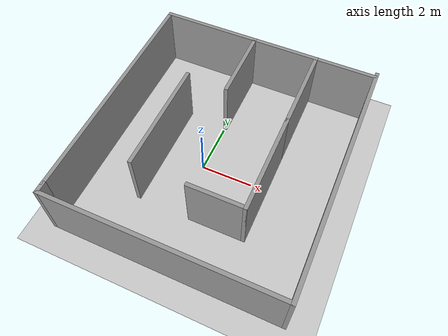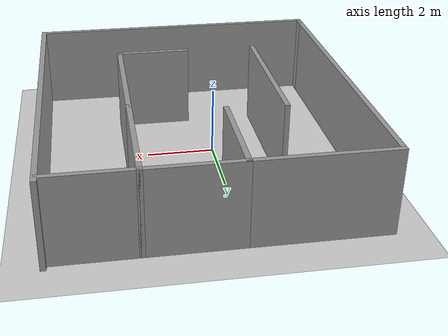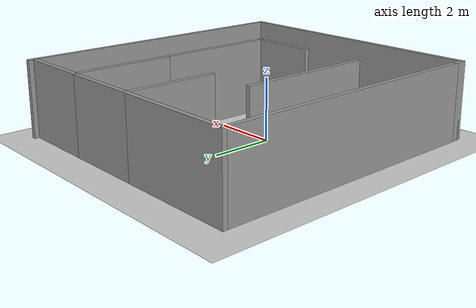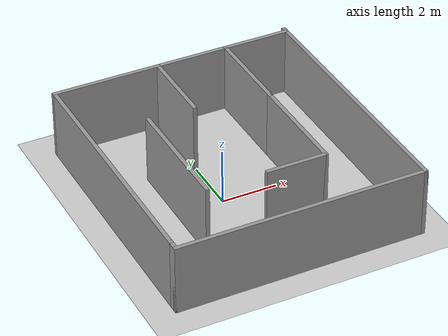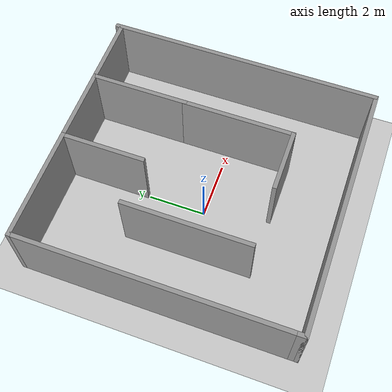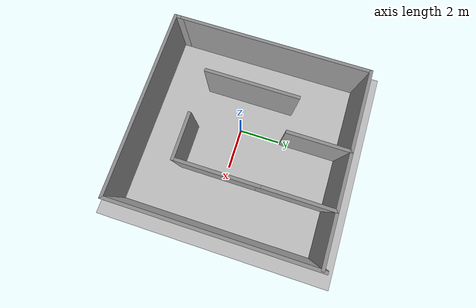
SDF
<sdf version="1.6">
 <world name="default">
  <light name="sun" type="directional">
   <pose>0 0 10 0 -0 0</pose>
   <diffuse>0.8 0.8 0.8 1</diffuse>
   <specular>0.2 0.2 0.2 1</specular>
   <attenuation>
    <range>1000</range>
    <constant>0.9</constant>
    <linear>0.01</linear>
    <quadratic>0.001</quadratic>
   </attenuation>
   <direction>-0.5 0.1 -0.9</direction>
  </light>
  <model name="ground_plane">
   <static>1</static>
   <link name="link">
    <collision name="collision">
     <geometry><plane><normal>0 0 1</normal><size>100 100</size></plane></geometry>
     <surface>
      <contact><collide_bitmask>65535</collide_bitmask></contact>
      <friction><ode><mu>100</mu><mu2>50</mu2></ode></friction>
     </surface>
    </collision>
    <visual name="visual">
     <cast_shadows>0</cast_shadows>
     <geometry><plane><normal>0 0 1</normal><size>100 100</size></plane></geometry>
     <material>
      <script><uri>file://media/materials/scripts/gazebo.material</uri><name>Gazebo/Grey</name></script>
     </material>
    </visual>
   </link>
  </model>
  <gravity>0 0 -9.8</gravity>
  <magnetic_field>6e-06 2.3e-05 -4.2e-05</magnetic_field>
  <atmosphere type="adiabatic"/>
  <physics name="default_physics" default="0" type="ode">
   <max_step_size>0.001</max_step_size>
   <real_time_factor>1</real_time_factor>
   <real_time_update_rate>1000</real_time_update_rate>
  </physics>
  <scene><ambient>0.4 0.4 0.4 1</ambient><background>0.7 0.7 0.7 1</background><shadows>1</shadows></scene>
  <spherical_coordinates>
   <surface_model>EARTH_WGS84</surface_model>
   <latitude_deg>0</latitude_deg>
   <longitude_deg>0</longitude_deg>
   <elevation>0</elevation>
   <heading_deg>0</heading_deg>
  </spherical_coordinates>
  <model name="maze">
   <pose>0.595048 0.342007 0 0 -0 0</pose>
   <link name="Wall_10">
    <collision name="Wall_10_Collision">
     <geometry><box><size>2.25 0.15 2.5</size></box></geometry>
     <pose>0 0 1.25 0 -0 0</pose>
    </collision>
    <visual name="Wall_10_Visual">
     <pose>0 0 1.25 0 -0 0</pose>
     <geometry><box><size>2.25 0.15 2.5</size></box></geometry>
     <material>
      <script><uri>file://media/materials/scripts/gazebo.material</uri><name>Gazebo/Grey</name></script>
      <ambient>1 1 1 1</ambient>
     </material>
     <meta><layer>0</layer></meta>
    </visual>
    <pose>0.975 -2.55 0 0 -0 0</pose>
   </link>
   <link name="Wall_11">
    <collision name="Wall_11_Collision">
     <geometry><box><size>4 0.15 2.5</size></box></geometry>
     <pose>0 0 1.25 0 -0 0</pose>
    </collision>
    <visual name="Wall_11_Visual">
     <pose>0 0 1.25 0 -0 0</pose>
     <geometry><box><size>4 0.15 2.5</size></box></geometry>
     <material>
      <script><uri>file://media/materials/scripts/gazebo.material</uri><name>Gazebo/Grey</name></script>
      <ambient>1 1 1 1</ambient>
     </material>
     <meta><layer>0</layer></meta>
    </visual>
    <pose>2.025 -0.625 0 0 -0 1.5708</pose>
   </link>
   <link name="Wall_12">
    <collision name="Wall_12_Collision">
     <geometry><box><size>3.5 0.15 2.5</size></box></geometry>
     <pose>0 0 1.25 0 -0 0</pose>
    </collision>
    <visual name="Wall_12_Visual">
     <pose>0 0 1.25 0 -0 0</pose>
     <geometry><box><size>3.5 0.15 2.5</size></box></geometry>
     <material>
      <script><uri>file://media/materials/scripts/gazebo.material</uri><name>Gazebo/Grey</name></script>
      <ambient>1 1 1 1</ambient>
     </material>
     <meta><layer>0</layer></meta>
    </visual>
    <pose>2.025 2.975 0 0 -0 1.5708</pose>
   </link>
   <link name="Wall_13">
    <collision name="Wall_13_Collision">
     <geometry><box><size>2.75 0.15 2.5</size></box></geometry>
     <pose>0 0 1.25 0 -0 0</pose>
    </collision>
    <visual name="Wall_13_Visual">
     <pose>0 0 1.25 0 -0 0</pose>
     <geometry><box><size>2.75 0.15 2.5</size></box></geometry>
     <material>
      <script><uri>file://media/materials/scripts/gazebo.material</uri><name>Gazebo/Grey</name></script>
      <ambient>1 1 1 1</ambient>
     </material>
     <meta><layer>0</layer></meta>
    </visual>
    <pose>0.725 4.65 0 0 -0 3.14159</pose>
   </link>
   <link name="Wall_14">
    <collision name="Wall_14_Collision">
     <geometry><box><size>3 0.15 2.5</size></box></geometry>
     <pose>0 0 1.25 0 -0 0</pose>
    </collision>
    <visual name="Wall_14_Visual">
     <pose>0 0 1.25 0 -0 0</pose>
     <geometry><box><size>3 0.15 2.5</size></box></geometry>
     <material>
      <script><uri>file://media/materials/scripts/gazebo.material</uri><name>Gazebo/Grey</name></script>
      <ambient>1 1 1 1</ambient>
     </material>
     <meta><layer>0</layer></meta>
    </visual>
    <pose>-0.575 3.225 0 0 -0 -1.5708</pose>
   </link>
   <link name="Wall_17">
    <collision name="Wall_17_Collision">
     <geometry><box><size>4 0.15 2.5</size></box></geometry>
     <pose>0 0 1.25 0 -0 0</pose>
    </collision>
    <visual name="Wall_17_Visual">
     <pose>0 0 1.25 0 -0 0</pose>
     <geometry><box><size>4 0.15 2.5</size></box></geometry>
     <material>
      <script><uri>file://media/materials/scripts/gazebo.material</uri><name>Gazebo/Grey</name></script>
      <ambient>1 1 1 1</ambient>
     </material>
     <meta><layer>0</layer></meta>
    </visual>
    <pose>-2.5 4.65 0 0 -0 3.14159</pose>
   </link>
   <link name="Wall_18">
    <collision name="Wall_18_Collision">
     <geometry><box><size>9.25 0.15 2.5</size></box></geometry>
     <pose>0 0 1.25 0 -0 0</pose>
    </collision>
    <visual name="Wall_18_Visual">
     <pose>0 0 1.25 0 -0 0</pose>
     <geometry><box><size>9.25 0.15 2.5</size></box></geometry>
     <material>
      <script><uri>file://media/materials/scripts/gazebo.material</uri><name>Gazebo/Grey</name></script>
      <ambient>1 1 1 1</ambient>
     </material>
     <meta><layer>0</layer></meta>
    </visual>
    <pose>-4.425 0.1 0 0 -0 -1.5708</pose>
   </link>
   <link name="Wall_20">
    <collision name="Wall_20_Collision">
     <geometry><box><size>0.5 0.15 2.5</size></box></geometry>
     <pose>0 0 1.25 0 -0 0</pose>
    </collision>
    <visual name="Wall_20_Visual">
     <pose>0 0 1.25 0 -0 0</pose>
     <geometry><box><size>0.5 0.15 2.5</size></box></geometry>
     <material>
      <script><uri>file://media/materials/scripts/gazebo.material</uri><name>Gazebo/Grey</name></script>
      <ambient>1 1 1 1</ambient>
     </material>
     <meta><layer>0</layer></meta>
    </visual>
    <pose>-4.425 -4.625 0 0 -0 -1.5708</pose>
   </link>
   <link name="Wall_21">
    <collision name="Wall_21_Collision">
     <geometry><box><size>9 0.15 2.5</size></box></geometry>
     <pose>0 0 1.25 0 -0 0</pose>
    </collision>
    <visual name="Wall_21_Visual">
     <pose>0 0 1.25 0 -0 0</pose>
     <geometry><box><size>9 0.15 2.5</size></box></geometry>
     <material>
      <script><uri>file://media/materials/scripts/gazebo.material</uri><name>Gazebo/Grey</name></script>
      <ambient>1 1 1 1</ambient>
     </material>
     <meta><layer>0</layer></meta>
    </visual>
    <pose>0 -4.8 0 0 -0 0</pose>
   </link>
   <link name="Wall_22">
    <collision name="Wall_22_Collision">
     <geometry><box><size>9.75 0.15 2.5</size></box></geometry>
     <pose>0 0 1.25 0 -0 0</pose>
    </collision>
    <visual name="Wall_22_Visual">
     <pose>0 0 1.25 0 -0 0</pose>
     <geometry><box><size>9.75 0.15 2.5</size></box></geometry>
     <material>
      <script><uri>file://media/materials/scripts/gazebo.material</uri><name>Gazebo/Grey</name></script>
      <ambient>1 1 1 1</ambient>
     </material>
     <meta><layer>0</layer></meta>
    </visual>
    <pose>4.425 0 0 0 -0 1.5708</pose>
   </link>
   <link name="Wall_24">
    <collision name="Wall_24_Collision">
     <geometry><box><size>2.5 0.15 2.5</size></box></geometry>
     <pose>0 0 1.25 0 -0 0</pose>
    </collision>
    <visual name="Wall_24_Visual">
     <pose>0 0 1.25 0 -0 0</pose>
     <geometry><box><size>2.5 0.15 2.5</size></box></geometry>
     <material>
      <script><uri>file://media/materials/scripts/gazebo.material</uri><name>Gazebo/Grey</name></script>
      <ambient>1 1 1 1</ambient>
     </material>
     <meta><layer>0</layer></meta>
    </visual>
    <pose>3.2 4.65 0 0 -0 0</pose>
   </link>
   <link name="Wall_7">
    <collision name="Wall_7_Collision">
     <geometry><box><size>4.5 0.15 2.5</size></box></geometry>
     <pose>0 0 1.25 0 -0 0</pose>
    </collision>
    <visual name="Wall_7_Visual">
     <pose>0 0 1.25 0 -0 0</pose>
     <geometry><box><size>4.5 0.15 2.5</size></box></geometry>
     <material>
      <script><uri>file://media/materials/scripts/gazebo.material</uri><name>Gazebo/Grey</name></script>
      <ambient>1 1 1 1</ambient>
     </material>
     <meta><layer>0</layer></meta>
    </visual>
    <pose>-2.2439 -0.335325 0 0 -0 1.5708</pose>
   </link>
   <static>1</static>
  </model>
 </world>
</sdf>
